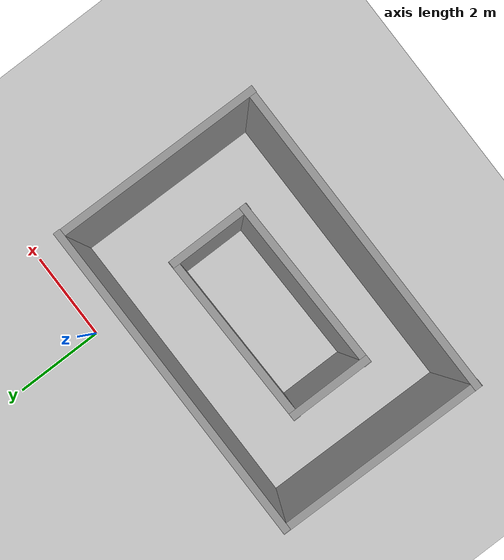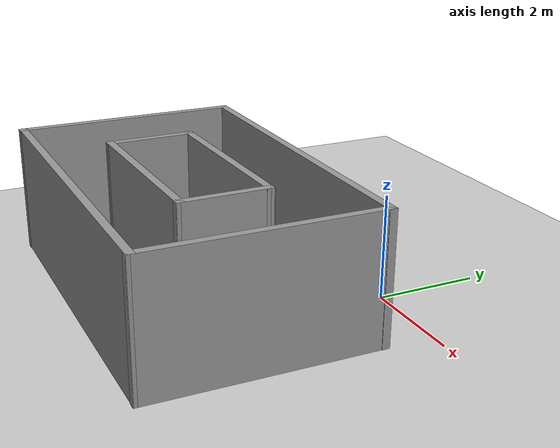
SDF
<sdf version="1.6">
 <world name="default">
  <light name="sun" type="directional">
   <pose>0 0 10 0 -0 0</pose>
   <diffuse>0.8 0.8 0.8 1</diffuse>
   <specular>0.1 0.1 0.1 1</specular>
   <attenuation>
    <range>1000</range>
    <constant>0.9</constant>
    <linear>0.01</linear>
    <quadratic>0.001</quadratic>
   </attenuation>
   <direction>-0.5 0.5 -1</direction>
  </light>
  <model name="ground_plane">
   <static>1</static>
   <link name="link">
    <collision name="collision">
     <geometry><plane><normal>0 0 1</normal><size>100 100</size></plane></geometry>
     <surface><friction><ode><mu>100</mu><mu2>50</mu2></ode></friction></surface>
    </collision>
    <visual name="visual">
     <cast_shadows>0</cast_shadows>
     <geometry><plane><normal>0 0 1</normal><size>100 100</size></plane></geometry>
     <material>
      <script><uri>file://media/materials/scripts/gazebo.material</uri><name>Gazebo/Grey</name></script>
     </material>
    </visual>
   </link>
  </model>
  <gravity>0 0 -9.8</gravity>
  <magnetic_field>6e-06 2.3e-05 -4.2e-05</magnetic_field>
  <atmosphere type="adiabatic"/>
  <physics name="default_physics" default="0" type="ode">
   <max_step_size>0.001</max_step_size>
   <real_time_factor>1</real_time_factor>
   <real_time_update_rate>1000</real_time_update_rate>
  </physics>
  <scene><ambient>0.4 0.4 0.4 1</ambient><background>0.7 0.7 0.7 1</background><shadows>1</shadows></scene>
  <spherical_coordinates>
   <surface_model>EARTH_WGS84</surface_model>
   <latitude_deg>0</latitude_deg>
   <longitude_deg>0</longitude_deg>
   <elevation>0</elevation>
   <heading_deg>0</heading_deg>
  </spherical_coordinates>
  <model name="Untitled">
   <pose>-1.74029 -3.105 0 0 -0 0</pose>
   <link name="Wall_0">
    <collision name="Wall_0_Collision">
     <geometry><box><size>6.80001 0.15 2.5</size></box></geometry>
     <pose>0 0 1.25 0 -0 0</pose>
    </collision>
    <visual name="Wall_0_Visual">
     <pose>0 0 1.25 0 -0 0</pose>
     <geometry><box><size>6.80001 0.15 2.5</size></box></geometry>
     <material>
      <script><uri>file://media/materials/scripts/gazebo.material</uri><name>Gazebo/Grey</name></script>
      <ambient>1 1 1 1</ambient>
     </material>
    </visual>
    <pose>0.025291 2.15 0 0 -0 0.001504</pose>
   </link>
   <link name="Wall_1">
    <collision name="Wall_1_Collision">
     <geometry><box><size>4.45029 0.15 2.5</size></box></geometry>
     <pose>0 0 1.25 0 -0 0</pose>
    </collision>
    <visual name="Wall_1_Visual">
     <pose>0 0 1.25 0 -0 0</pose>
     <geometry><box><size>4.45029 0.15 2.5</size></box></geometry>
     <material>
      <script><uri>file://media/materials/scripts/gazebo.material</uri><name>Gazebo/Grey</name></script>
      <ambient>1 1 1 1</ambient>
     </material>
    </visual>
    <pose>3.32029 0.005 0 0 0 -1.5801</pose>
   </link>
   <link name="Wall_2">
    <collision name="Wall_2_Collision">
     <geometry><box><size>6.80001 0.15 2.5</size></box></geometry>
     <pose>0 0 1.25 0 -0 0</pose>
    </collision>
    <visual name="Wall_2_Visual">
     <pose>0 0 1.25 0 -0 0</pose>
     <geometry><box><size>6.80001 0.15 2.5</size></box></geometry>
     <material>
      <script><uri>file://media/materials/scripts/gazebo.material</uri><name>Gazebo/Grey</name></script>
      <ambient>1 1 1 1</ambient>
     </material>
    </visual>
    <pose>-0.024709 -2.14 0 0 0 -3.14009</pose>
   </link>
   <link name="Wall_3">
    <collision name="Wall_3_Collision">
     <geometry><box><size>4.45029 0.15 2.5</size></box></geometry>
     <pose>0 0 1.25 0 -0 0</pose>
    </collision>
    <visual name="Wall_3_Visual">
     <pose>0 0 1.25 0 -0 0</pose>
     <geometry><box><size>4.45029 0.15 2.5</size></box></geometry>
     <material>
      <script><uri>file://media/materials/scripts/gazebo.material</uri><name>Gazebo/Grey</name></script>
      <ambient>1 1 1 1</ambient>
     </material>
    </visual>
    <pose>-3.32971 -0.005 0 0 -0 1.56149</pose>
   </link>
   <link name="Wall_5">
    <collision name="Wall_5_Collision">
     <geometry><box><size>1.75 0.15 2.5</size></box></geometry>
     <pose>0 0 1.25 0 -0 0</pose>
    </collision>
    <visual name="Wall_5_Visual">
     <pose>0 0 1.25 0 -0 0</pose>
     <geometry><box><size>1.75 0.15 2.5</size></box></geometry>
     <material>
      <script><uri>file://media/materials/scripts/gazebo.material</uri><name>Gazebo/Grey</name></script>
      <ambient>1 1 1 1</ambient>
     </material>
    </visual>
    <pose>-1.78971 -0.035 0 0 0 -1.5708</pose>
   </link>
   <link name="Wall_6">
    <collision name="Wall_6_Collision">
     <geometry><box><size>3.64052 0.15 2.5</size></box></geometry>
     <pose>0 0 1.25 0 -0 0</pose>
    </collision>
    <visual name="Wall_6_Visual">
     <pose>0 0 1.25 0 -0 0</pose>
     <geometry><box><size>3.64052 0.15 2.5</size></box></geometry>
     <material>
      <script><uri>file://media/materials/scripts/gazebo.material</uri><name>Gazebo/Grey</name></script>
      <ambient>1 1 1 1</ambient>
     </material>
    </visual>
    <pose>-0.054709 -0.805 0 0 -0 0.01719</pose>
   </link>
   <link name="Wall_7">
    <collision name="Wall_7_Collision">
     <geometry><box><size>1.75 0.15 2.5</size></box></geometry>
     <pose>0 0 1.25 0 -0 0</pose>
    </collision>
    <visual name="Wall_7_Visual">
     <pose>0 0 1.25 0 -0 0</pose>
     <geometry><box><size>1.75 0.15 2.5</size></box></geometry>
     <material>
      <script><uri>file://media/materials/scripts/gazebo.material</uri><name>Gazebo/Grey</name></script>
      <ambient>1 1 1 1</ambient>
     </material>
    </visual>
    <pose>1.69029 0.015 0 0 -0 1.5708</pose>
   </link>
   <link name="Wall_8">
    <collision name="Wall_8_Collision">
     <geometry><box><size>3.64052 0.15 2.5</size></box></geometry>
     <pose>0 0 1.25 0 -0 0</pose>
    </collision>
    <visual name="Wall_8_Visual">
     <pose>0 0 1.25 0 -0 0</pose>
     <geometry><box><size>3.64052 0.15 2.5</size></box></geometry>
     <material>
      <script><uri>file://media/materials/scripts/gazebo.material</uri><name>Gazebo/Grey</name></script>
      <ambient>1 1 1 1</ambient>
     </material>
    </visual>
    <pose>-0.054709 0.795 0 0 0 -3.1244</pose>
   </link>
   <static>1</static>
  </model>
 </world>
</sdf>
